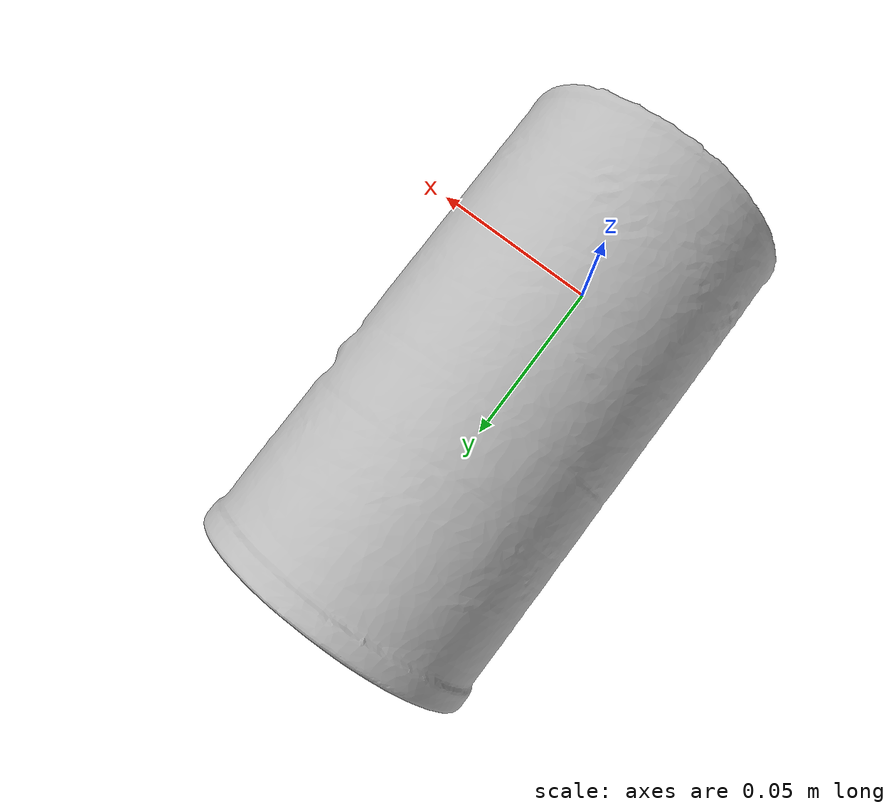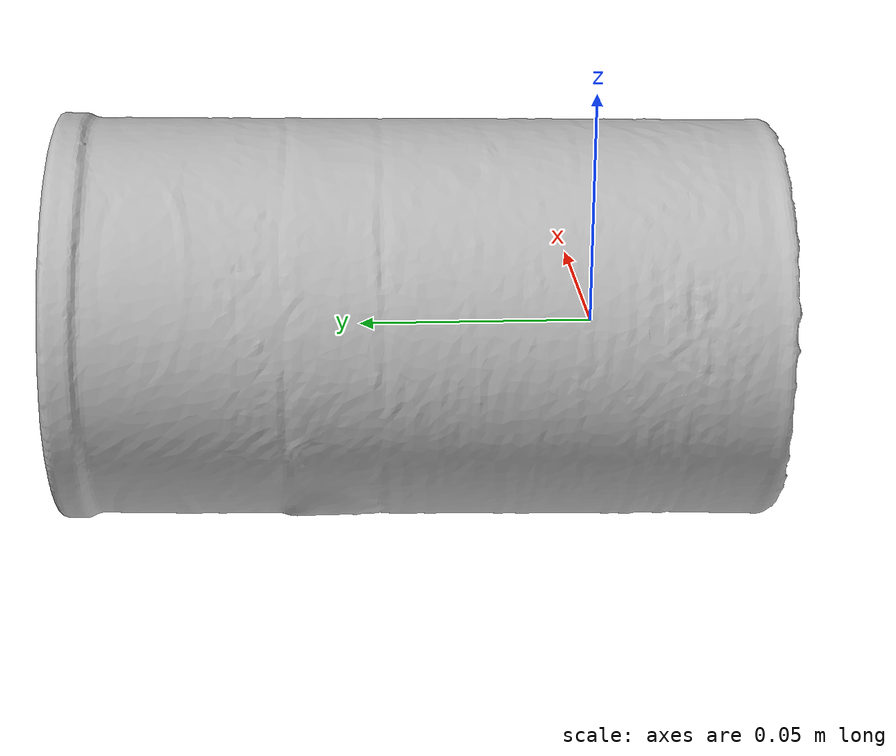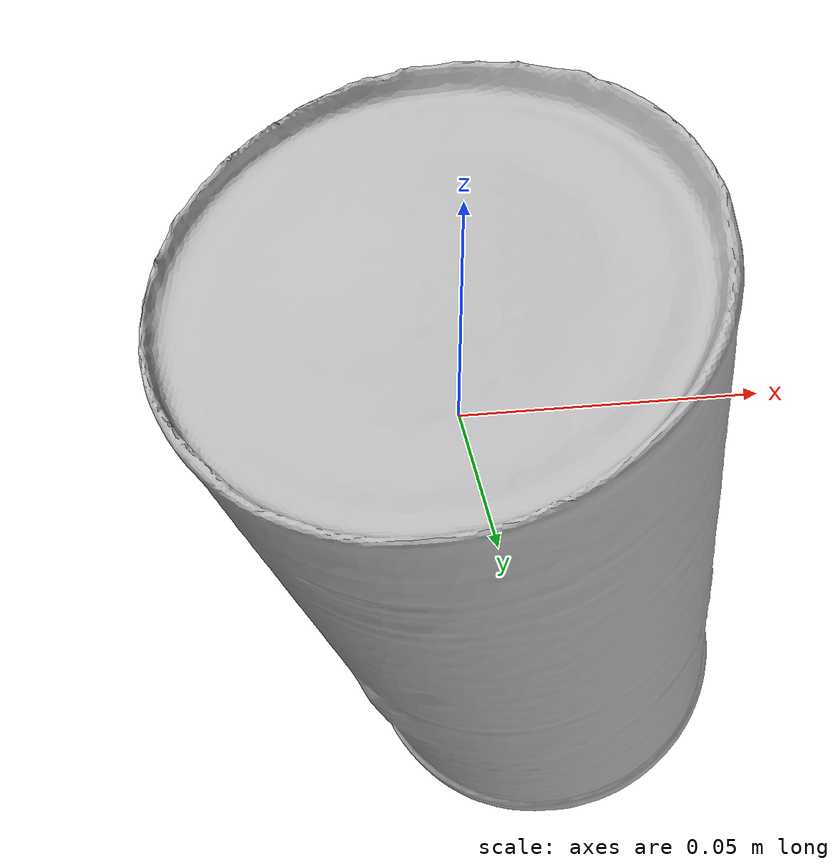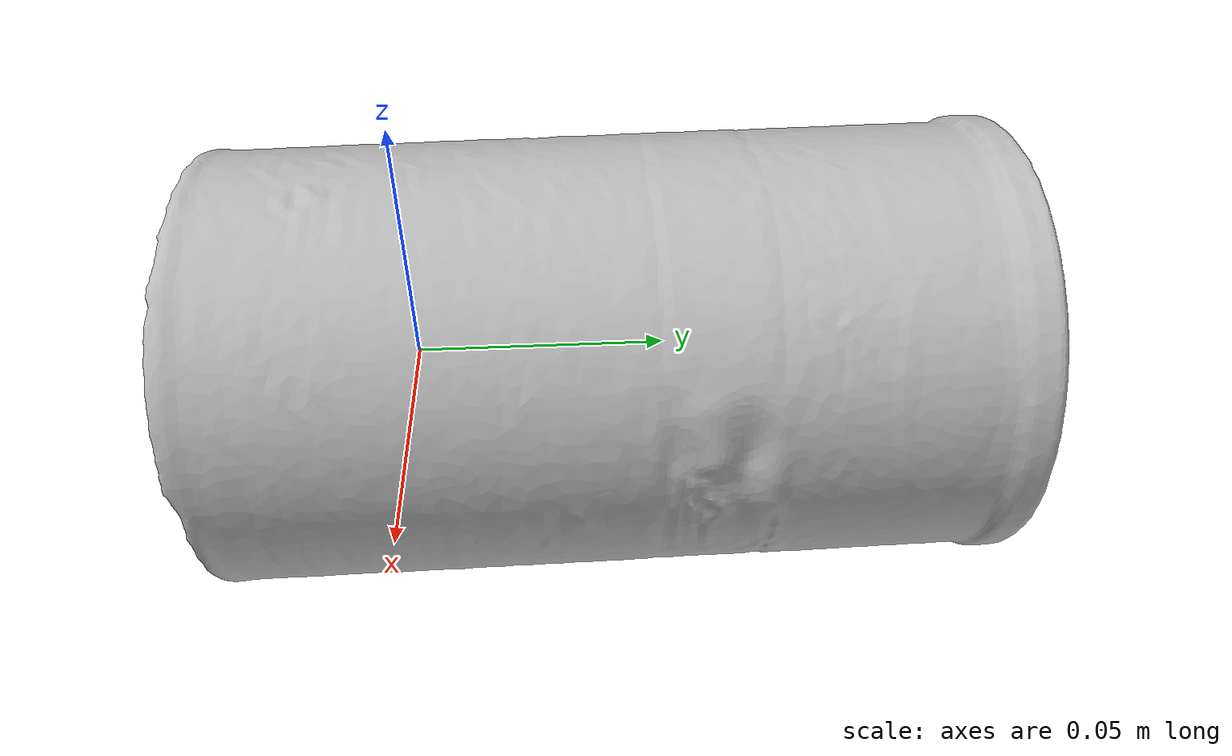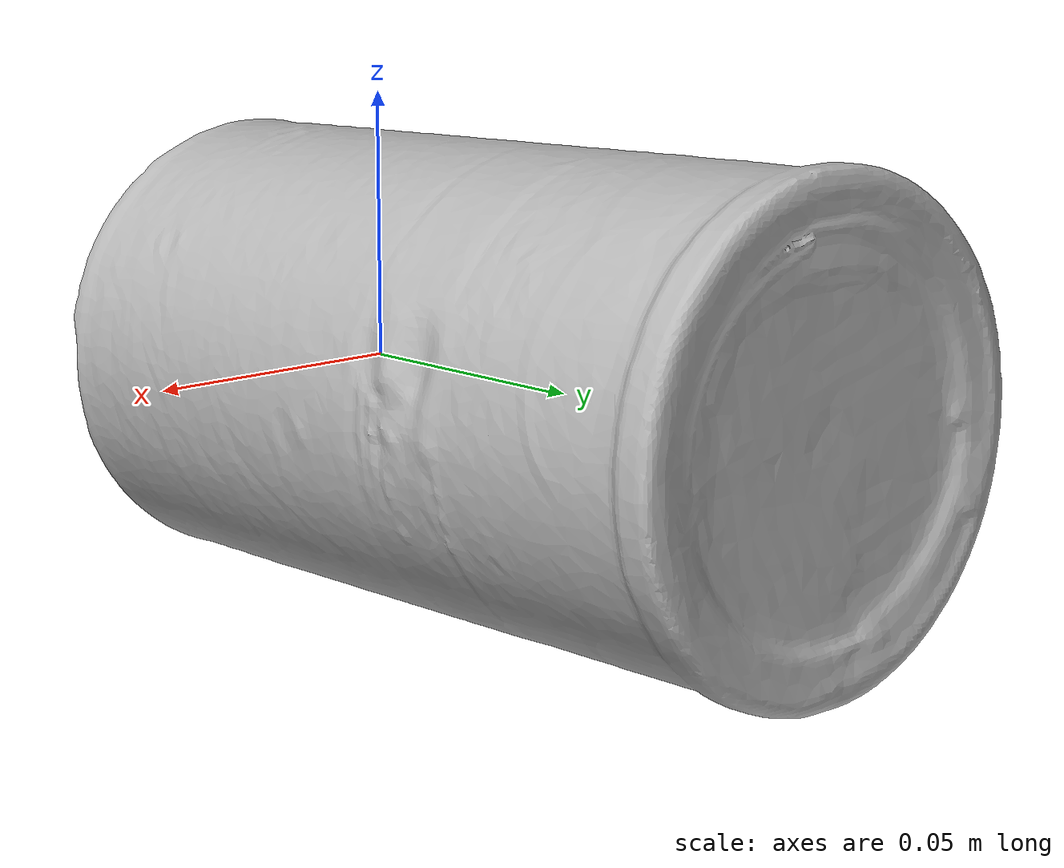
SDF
<?xml version='1.0'?>
<sdf version="1.4">
  <model name="PotatoeSticks">
    <static>false</static>
    <link name="link">
      <inertial>
        <pose>0.002386384314625642 0.038574836128763314 0.0008895175406693722 1.5496187462233562 -0.6184628617989101 -3.129655122566871</pose>
        <mass>0.08898969390012383</mass>
        <inertia>
          <ixx>0.00021212288640086392</ixx>
          <ixy>-1.3939333290065246e-20</ixy>
          <ixz>4.2299343628953224e-22</ixz>
          <iyy>0.00021201930974723215</iyy>
          <iyz>-4.4644633999808015e-21</iyz>
          <izz>8.296898885569421e-05</izz>
        </inertia>
      </inertial>
      <collision name="collision">
        <geometry>
          <mesh>
            <!-- Use a downsampled mesh for collisions -->
            <uri>model:///PotatoeSticks/PotatoeSticks_250_collision.obj</uri>
	        </mesh>
        </geometry>
        <surface>
      </surface>
      </collision>
      <visual name="visual">
        <geometry>
          <mesh>
            <uri>model:///PotatoeSticks/PotatoeSticks_25k_tex.obj</uri>
	        </mesh>
        </geometry>
        <material>
          <script>
            <uri>model:///PotatoeSticks/PotatoeSticks.material</uri>
            <name>PotatoeSticks</name>
          </script>
        </material>
      </visual>
    </link>
  </model>
</sdf>
